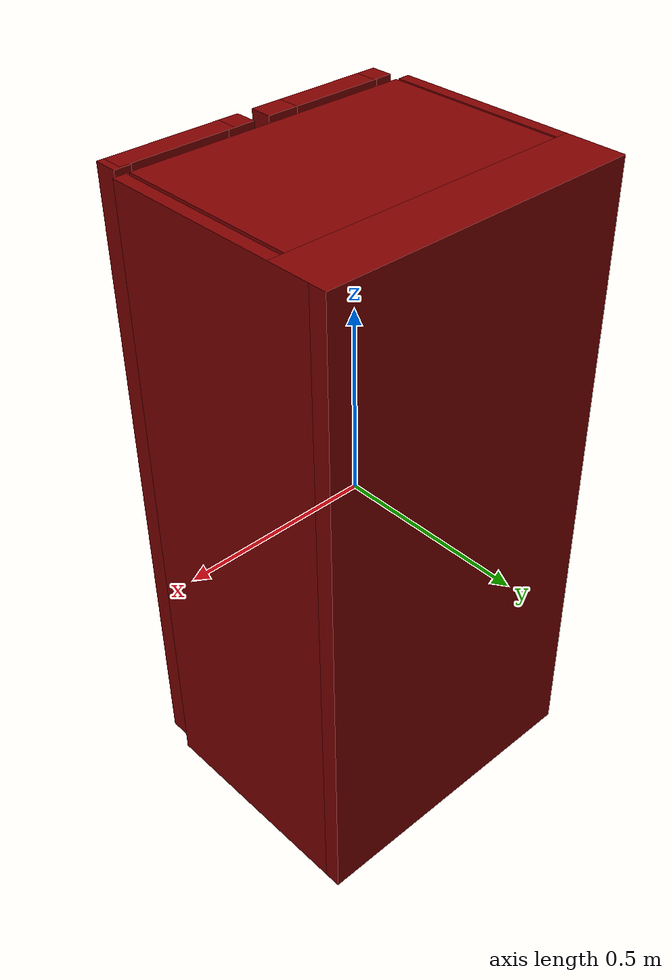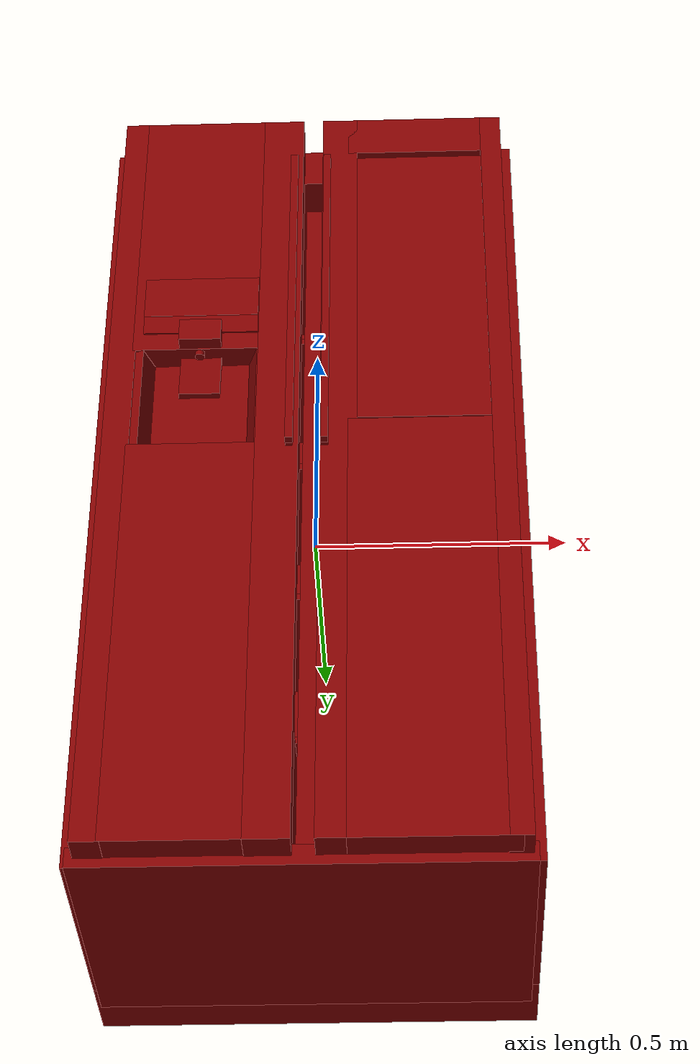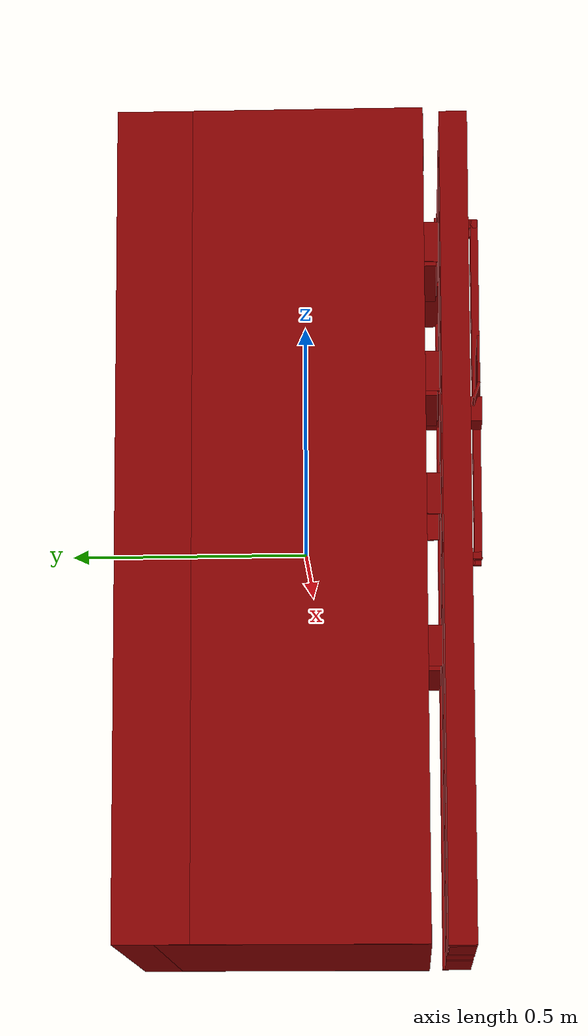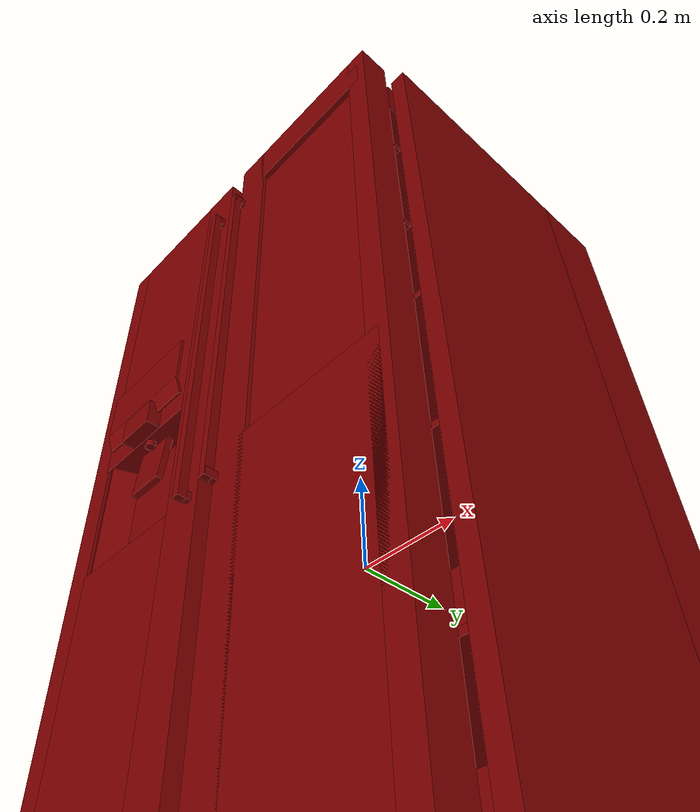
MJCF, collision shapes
<?xml version='1.0' encoding='UTF-8'?>
<mujoco model="model">
  <option timestep="0.002" gravity="0.0 0.0 -9.81"/>
  <compiler angle="radian"/>
  <asset>
    <mesh file="visuals/freezer_door.obj" name="freezer_door_vis"/>
    <mesh file="visuals/freezer_door_Clear.obj" name="freezer_door_Clear_vis"/>
    <mesh file="visuals/freezer_drawer0.obj" name="freezer_drawer0_vis"/>
    <mesh file="visuals/fridge_door.obj" name="fridge_door_vis"/>
    <mesh file="visuals/fridge_door_Clear.obj" name="fridge_door_Clear_vis"/>
    <mesh file="visuals/fridge_drawer0.obj" name="fridge_drawer0_vis"/>
    <mesh file="visuals/Body001.obj" name="Body001_vis"/>
    <mesh file="visuals/Body001_Clear.obj" name="Body001_Clear_vis"/>
    <mesh file="visuals/Handle001.obj" name="Handle001_vis"/>
    <texture file="visuals/T_BC001.png" name="Body001_material" type="2d"/>
    <material name="Body001_material" rgba="1 1 1 1.0" texture="Body001_material" shininess="0.4472135901451111" specular="0.41"/>
    <texture file="visuals/T_BC001.png" name="freezer_door_material" type="2d"/>
    <material name="freezer_door_material" rgba="1 1 1 1.0" texture="freezer_door_material" shininess="0.4472135901451111" specular="0.81"/>
    <material name="freezer_door_Clear_material" rgba="0.41474002599716187 0.41474002599716187 0.41474002599716187 0.699999988079071" shininess="0.5" specular="0.81"/>
    <texture file="visuals/T_BC001.png" name="Handle001_material" type="2d"/>
    <material name="Handle001_material" rgba="1 1 1 1.0" texture="Handle001_material" shininess="0.4472135901451111" specular="0.3103448502657381"/>
    <texture file="visuals/T_BC001.png" name="freezer_drawer0_material" type="2d"/>
    <material name="freezer_drawer0_material" rgba="1 1 1 1.0" texture="freezer_drawer0_material" shininess="0.4472135901451111" specular="0.3103448502657381"/>
    <texture file="visuals/T_BC001.png" name="fridge_door_material" type="2d"/>
    <material name="fridge_door_material" rgba="1 1 1 1.0" texture="fridge_door_material" shininess="0.4472135901451111" specular="0.81"/>
    <material name="fridge_door_Clear_material" rgba="0.41474002599716187 0.41474002599716187 0.41474002599716187 0.699999988079071" shininess="0.5" specular="0.81"/>
    <material name="fridge_drawer0_material" rgba="0.41474002599716187 0.41474002599716187 0.41474002599716187 0.699999988079071" shininess="0.5" specular="0.4"/>
    <material name="Body001_Clear_material" rgba="0.41474002599716187 0.41474002599716187 0.41474002599716187 0.699999988079071" shininess="0.5" specular="0.3103448502657381"/>
  </asset>
  <default>
    <default class="visual">
      <geom conaffinity="0" contype="0" group="1" type="mesh"/>
    </default>
    <default class="collision">
      <geom group="0" rgba="0.5 0 0 0.5"/>
    </default>
    <default class="spawn">
      <geom group="0" rgba="1 1 1 0.5" contype="0" conaffinity="0"/>
      <site group="0" rgba="1 1 1 0.5"/>
    </default>
    <default class="region">
      <geom group="1" conaffinity="0" contype="0" rgba="0 1 0 0"/>
    </default>
  </default>
  <worldbody>
    <body>
      <body name="object">
        <geom mesh="Body001_vis" type="mesh" solimp="0.998 0.998 0.001" solref="0.001 1" friction="0.95 0.3 0.1" class="visual" material="Body001_material"/>
        <geom class="collision" type="box" pos="-0.3998491168022156 0.03714057803153992 -3.230525180697441e-09" size="0.01608090288937092 0.2926904857158661 0.8571996688842773" quat="1.0 0.0 0.0 0.0"/>
        <geom class="collision" type="box" pos="0.40000638365745544 0.03714057803153992 1.0099029168486595e-08" size="0.01593198999762535 0.2926918566226959 0.8572017550468445" quat="1.0 0.0 0.0 0.0"/>
        <geom class="collision" type="box" pos="-1.1801021173596382e-05 0.29677724838256836 -3.2014213502407074e-09" size="0.41595014929771423 0.0777471736073494 0.8572038412094116" quat="1.0 0.0 0.0 0.0"/>
        <geom class="collision" type="box" pos="-0.0012382620479911566 0.016881851479411125 0.8108739852905273" size="0.37610000371932983 0.273532897233963 0.046206194907426834" quat="1.0 0.0 0.0 0.0"/>
        <geom class="collision" type="box" pos="-0.17440995573997498 0.057972297072410583 0.4543333649635315" size="0.16287565231323242 0.16558460891246796 0.006923846900463104" quat="1.0 0.0 0.0 0.0"/>
        <geom class="collision" type="box" pos="-0.0013495938619598746 0.0028999578207731247 -0.04240342974662781" size="0.017184589058160782 0.17612574994564056 0.8143921494483948" quat="1.0 0.0 0.0 0.0"/>
        <geom class="collision" type="box" pos="-0.003516203723847866 0.016881829127669334 -0.8378037810325623" size="0.40684476494789124 0.27353981137275696 0.0195063017308712" quat="1.0 0.0 0.0 0.0"/>
        <geom class="collision" type="box" pos="0.18122144043445587 0.08383700996637344 -0.2676292657852173" size="0.16114282608032227 0.007333500310778618 0.03612767904996872" quat="1.0 0.0 0.0 0.0"/>
        <geom class="collision" type="box" pos="0.3820780813694 -0.03190062940120697 -0.2676292657852173" size="0.003994905389845371 0.11368051171302795 0.036125827580690384" quat="1.0 0.0 0.0 0.0"/>
        <geom class="collision" type="box" pos="-0.38217926025390625 -0.03190062940120697 -0.2676292657852173" size="0.003994922619313002 0.11368140578269958 0.03612605109810829" quat="1.0 0.0 0.0 0.0"/>
        <geom class="collision" type="box" pos="0.02233295328915119 -0.03190062940120697 -0.2676292657852173" size="0.003994935192167759 0.11368205398321152 0.036126215010881424" quat="1.0 0.0 0.0 0.0"/>
        <geom class="collision" type="box" pos="-0.3789580166339874 -0.03190062940120697 -0.4345930814743042" size="0.007216072175651789 0.11368294805288315 0.08158496022224426" quat="1.0 0.0 0.0 0.0"/>
        <geom class="collision" type="box" pos="0.3772643804550171 -0.03190062940120697 -0.4304383099079132" size="0.008808289654552937 0.11368383467197418 0.0907626748085022" quat="1.0 0.0 0.0 0.0"/>
        <geom class="collision" type="box" pos="0.1780054271221161 0.057972297072410583 0.4129199683666229" size="0.16684800386428833 0.16560068726539612 0.006924349814653397" quat="1.0 0.0 0.0 0.0"/>
        <geom class="collision" type="box" pos="0.1780054271221161 0.057972297072410583 0.09163431823253632" size="0.16684836149215698 0.16560110449790955 0.006924362853169441" quat="1.0 0.0 0.0 0.0"/>
        <geom class="collision" type="box" pos="-0.17601948976516724 0.057972297072410583 0.12305711209774017" size="0.16684873402118683 0.16560152173042297 0.006924375891685486" quat="1.0 0.0 0.0 0.0"/>
        <geom class="collision" type="box" pos="-0.17601948976516724 0.057972297072410583 -0.19491110742092133" size="0.16684909164905548 0.1656019389629364 0.006924388464540243" quat="1.0 0.0 0.0 0.0"/>
        <geom class="collision" type="box" pos="-0.17601948976516724 0.057972297072410583 -0.5179890990257263" size="0.16684946417808533 0.16560234129428864 0.006924401503056288" quat="1.0 0.0 0.0 0.0"/>
        <geom class="collision" type="box" pos="0.1780054271221161 -0.004818879067897797 -0.30868032574653625" size="0.1668516993522644 0.1656048744916916 0.00692448066547513" quat="1.0 0.0 0.0 0.0"/>
        <body name="freezer_door">
          <joint axis="0.0 0.0 -1.0" pos="-0.37913239002227783 -0.311129629611969 0.00011271238327026367" limited="true" name="freezer_door_joint" range="0.0 1.5707963267948966" type="hinge" damping="1" frictionloss="1" armature=".01" stiffness="0.05"/>
          <geom mesh="freezer_door_vis" type="mesh" solimp="0.998 0.998 0.001" solref="0.001 1" friction="0.95 0.3 0.1" class="visual" material="freezer_door_material"/>
          <geom class="collision" type="box" pos="-0.3637799322605133 -0.3178723156452179 -4.644957243726822e-06" size="0.02609415352344513 0.028971223160624504 0.8574408888816833" quat="1.0 0.0 0.0 0.0"/>
          <geom class="collision" type="box" pos="-0.058020249009132385 -0.3178723454475403 -4.545247520582052e-06" size="0.040952883660793304 0.028972994536161423 0.8574987053871155" quat="1.0 0.0 0.0 0.0"/>
          <geom class="collision" type="box" pos="-0.201767235994339 -0.31787237524986267 0.5436348915100098" size="0.1416359692811966 0.02897285483777523 0.31372469663619995" quat="1.0 0.0 0.0 0.0"/>
          <geom class="collision" type="box" pos="-0.20176735520362854 -0.3191768527030945 -0.4313064515590668" size="0.1416359394788742 0.027668198570609093 0.42609769105911255" quat="1.0 0.0 0.0 0.0"/>
          <geom class="collision" type="box" pos="-0.21049916744232178 -0.289520263671875 0.12573562562465668" size="0.09687431156635284 0.0026282654143869877 0.15400418639183044" quat="1.0 0.0 0.0 0.0"/>
          <geom class="collision" type="box" pos="-0.10186759382486343 -0.31699565052986145 0.1257355958223343" size="0.008751383051276207 0.025852853432297707 0.1540149748325348" quat="5.978950667895333e-08 -0.9848077297210693 -0.17364826798439026 9.569190950742268e-08"/>
          <geom class="collision" type="box" pos="-0.03354785591363907 -0.3616794943809509 -0.010237783193588257" size="0.007116621360182762 0.011857819743454456 0.007636724505573511" quat="1.0 0.0 0.0 0.0" name="freezer_door_handle_2"/>
          <geom class="collision" type="box" pos="-0.03324173390865326 -0.3616794943809509 0.7223271131515503" size="0.007422801572829485 0.011857821606099606 0.009034658782184124" quat="1.0 0.0 0.0 0.0" name="freezer_door_handle_1"/>
          <geom class="collision" type="box" pos="-0.033224087208509445 -0.36676377058029175 0.35558971762657166" size="0.007440386340022087 0.008210212923586369 0.37397822737693787" quat="1.0 0.0 0.0 0.0" name="freezer_door_handle_main"/>
          <geom class="collision" type="box" pos="-0.32068294286727905 -0.3180026113986969 0.12573552131652832" size="0.008751380257308483 0.026924479752779007 0.1540149301290512" quat="0.9848077297210693 -1.006560026439729e-07 -6.740105362723625e-08 -0.17364826798439026"/>
          <geom class="collision" type="box" pos="-0.21049916744232178 -0.3656257688999176 0.3469392955303192" size="0.11166238784790039 0.0026279075536876917 0.04852776601910591" quat="1.0 0.0 0.0 0.0"/>
          <geom class="collision" type="box" pos="-0.21049916744232178 -0.3592568039894104 0.25828516483306885" size="0.040849726647138596 0.014025458134710789 0.025840990245342255" quat="1.0 0.0 0.0 0.0"/>
          <geom class="collision" type="box" pos="-0.21049916744232178 -0.3605700135231018 0.2809782922267914" size="0.11166238784790039 0.002627908019348979 0.017435817047953606" quat="0.9843474626541138 0.1762387603521347 0.0 0.0"/>
          <geom class="collision" type="cylinder" pos="-0.2122420370578766 -0.33505016565322876 0.22447526454925537" size="0.009479692205786705 0.005059966817498207" quat="1.0 0.0 0.0 0.0"/>
          <geom class="collision" type="box" pos="-0.20444320142269135 -0.2935011088848114 -0.0009552054107189178" size="0.16011016070842743 0.0026279075536876917 0.8543738722801208" quat="1.0 0.0 0.0 0.0" name="freezer_door_main"/>
          <body name="freezer_door_Clear">
            <geom mesh="freezer_door_Clear_vis" type="mesh" solimp="0.998 0.998 0.001" solref="0.001 1" friction="0.95 0.3 0.1" class="visual" material="freezer_door_Clear_material"/>
            <geom class="collision" type="box" pos="-0.1932118535041809 -0.21412567794322968 0.3201095759868622" size="0.14153681695461273 0.00447157071903348 0.04057547450065613" quat="1.0 0.0 0.0 0.0"/>
            <geom class="collision" type="box" pos="-0.3274475634098053 -0.2465827763080597 0.32012560963630676" size="0.0044717323035001755 0.03794160485267639 0.04216281697154045" quat="0.9990481734275818 3.935991443881903e-08 3.606675491596434e-08 0.04362005740404129"/>
            <geom class="collision" type="box" pos="-0.058751147240400314 -0.24590946733951569 0.32012560963630676" size="0.0044717323035001755 0.037941597402095795 0.04216281697154045" quat="0.9961947202682495 3.431528128317041e-08 4.0895347552805106e-08 -0.08715561032295227"/>
            <geom class="collision" type="box" pos="-0.19410477578639984 -0.24343930184841156 0.2734234035015106" size="0.13424493372440338 0.03696306794881821 0.0044713094830513" quat="1.0 0.0 0.0 0.0"/>
            <geom class="collision" type="box" pos="-0.1932118535041809 -0.21412567794322968 0.5949305295944214" size="0.14153681695461273 0.00447157071903348 0.04057547450065613" quat="1.0 0.0 0.0 0.0"/>
            <geom class="collision" type="box" pos="-0.3281252086162567 -0.2465827763080597 0.5949465036392212" size="0.0044717323035001755 0.03794160485267639 0.04216281697154045" quat="0.9990481734275818 3.935991443881903e-08 3.606675491596434e-08 0.04362005740404129"/>
            <geom class="collision" type="box" pos="-0.058751147240400314 -0.24590946733951569 0.5949465036392212" size="0.0044717323035001755 0.037941597402095795 0.04216281697154045" quat="0.9961947202682495 3.431528128317041e-08 4.0895347552805106e-08 -0.08715561032295227"/>
            <geom class="collision" type="box" pos="-0.19410477578639984 -0.24343930184841156 0.5482443571090698" size="0.13424493372440338 0.03696461394429207 0.004471502732485533" quat="1.0 0.0 0.0 0.0"/>
            <geom class="collision" type="box" pos="-0.19127090275287628 -0.21412567794322968 -0.25149473547935486" size="0.14153681695461273 0.00447157071903348 0.04057547450065613" quat="1.0 0.0 0.0 0.0"/>
            <geom class="collision" type="box" pos="-0.3251919448375702 -0.2465827763080597 -0.25147876143455505" size="0.0044717323035001755 0.03794160485267639 0.04216281697154045" quat="0.9990481734275818 3.935991443881903e-08 3.606675491596434e-08 0.04362005740404129"/>
            <geom class="collision" type="box" pos="-0.058751147240400314 -0.24590946733951569 -0.25147876143455505" size="0.0044717323035001755 0.037941597402095795 0.04216281697154045" quat="0.9961947202682495 3.431528128317041e-08 4.0895347552805106e-08 -0.08715561032295227"/>
            <geom class="collision" type="box" pos="-0.19410477578639984 -0.24343930184841156 -0.2981809079647064" size="0.13424493372440338 0.03696485608816147 0.004471533000469208" quat="1.0 0.0 0.0 0.0"/>
            <geom class="collision" type="box" pos="-0.1932118535041809 -0.21412567794322968 0.060747116804122925" size="0.14153681695461273 0.00447157071903348 0.04057547450065613" quat="1.0 0.0 0.0 0.0"/>
            <geom class="collision" type="box" pos="-0.3368045389652252 -0.2465827763080597 0.060763150453567505" size="0.0044717323035001755 0.03794160485267639 0.04216281697154045" quat="0.9990481734275818 3.935991443881903e-08 3.606675491596434e-08 0.04362005740404129"/>
            <geom class="collision" type="box" pos="-0.058751147240400314 -0.24590946733951569 0.060763150453567505" size="0.0044717323035001755 0.037941597402095795 0.04216281697154045" quat="0.9961947202682495 3.431528128317041e-08 4.0895347552805106e-08 -0.08715561032295227"/>
          </body>
          <body name="Handle001">
            <joint axis="1.0 0.0 0.0" pos="-0.21227864921092987 -0.3191654682159424 0.23152491450309753" limited="true" name="Handle001_joint" range="0.0 0.17453292519943295" type="hinge" damping="1" frictionloss="1" armature=".01" stiffness="0.05"/>
            <geom mesh="Handle001_vis" type="mesh" solimp="0.998 0.998 0.001" solref="0.001 1" friction="0.95 0.3 0.1" class="visual" material="Handle001_material"/>
            <geom class="collision" type="box" pos="-0.21049916744232178 -0.32436349987983704 0.1745854616165161" size="0.0395553819835186 0.006190866231918335 0.048885319381952286" quat="0.9989607930183411 -0.04557826742529869 -0.0 0.0"/>
          </body>
        </body>
        <body name="freezer_drawer0">
          <geom class="region" name="reg_freezer_drawer0" type="box" pos="-0.17982512712478638 -0.0020901858806610107 -0.6719180941581726" size="0.15369108319282532 0.1818908154964447 0.12094289064407349"/>
          <joint axis="0.0 -1.0 0.0" pos="-0.18010088801383972 -0.003710433840751648 -0.6739355325698853" limited="true" name="freezer_drawer0_joint" range="0.0 0.4" type="slide" damping="1" frictionloss="1" armature=".01" stiffness="0.05"/>
          <geom mesh="freezer_drawer0_vis" type="mesh" solimp="0.998 0.998 0.001" solref="0.001 1" friction="0.95 0.3 0.1" class="visual" material="freezer_drawer0_material"/>
          <geom class="collision" type="box" pos="-0.0263947956264019 0.0004640929400920868 -0.6716325283050537" size="0.002503300318494439 0.19439047574996948 0.12257783114910126" quat="1.0 0.0 0.0 0.0"/>
          <geom class="collision" type="box" pos="-0.18498799204826355 -0.0035164300352334976 -0.7931268215179443" size="0.1476873755455017 0.1884990632534027 0.006600691471248865" quat="1.0 0.0 0.0 0.0"/>
          <geom class="collision" type="box" pos="-0.1797444075345993 -0.19903026521205902 -0.6743975877761841" size="0.008531502448022366 0.14768734574317932 0.1249077096581459" quat="0.7064337730407715 0.030843520537018776 0.030843501910567284 -0.7064337730407715"/>
          <geom class="collision" type="box" pos="-0.3286738097667694 -0.005953514948487282 -0.6712871789932251" size="0.0017044241540133953 0.1965075135231018 0.12294085323810577" quat="1.0 0.0 0.0 0.0"/>
          <geom class="collision" type="box" pos="-0.18498799204826355 0.1923104077577591 -0.6713608503341675" size="0.14768728613853455 0.004717339761555195 0.12290552258491516" quat="0.9993630051612854 -0.035687901079654694 7.924383650813105e-18 1.4908910031358285e-24"/>
        </body>
        <body name="fridge_door">
          <joint axis="0.0 0.0 1.0" pos="0.36411282420158386 -0.30992037057876587 0.00013592839241027832" limited="true" name="fridge_door_joint" range="0.0 1.5707963267948966" type="hinge" damping="1" frictionloss="1" armature=".01" stiffness="0.05"/>
          <geom mesh="fridge_door_vis" type="mesh" solimp="0.998 0.998 0.001" solref="0.001 1" friction="0.95 0.3 0.1" class="visual" material="fridge_door_material"/>
          <geom class="collision" type="box" pos="0.21107126772403717 -0.28766950964927673 0.6105823516845703" size="0.16717509925365448 0.03695930913090706 0.004470839165151119" quat="1.0 0.0 0.0 0.0"/>
          <geom class="collision" type="box" pos="0.21638233959674835 -0.3154853582382202 0.6317541599273682" size="0.17248615622520447 0.004470906686037779 0.01505897007882595" quat="1.0 0.0 0.0 0.0"/>
          <geom class="collision" type="box" pos="0.21107125282287598 -0.28759223222732544 0.36789071559906006" size="0.16717509925365448 0.03695967420935631 0.004470885265618563" quat="1.0 0.0 0.0 0.0"/>
          <geom class="collision" type="box" pos="0.21638232469558716 -0.3154853582382202 0.3890624940395355" size="0.17248615622520447 0.004470952320843935 0.01505915354937315" quat="1.0 0.0 0.0 0.0"/>
          <geom class="collision" type="box" pos="0.3716951012611389 -0.31598326563835144 -2.3632310330867767e-08" size="0.02119011990725994 0.030856389552354813 0.8573130369186401" quat="1.0 0.0 0.0 0.0"/>
          <geom class="collision" type="box" pos="0.05885697156190872 -0.31830477714538574 -2.8405338525772095e-08" size="0.03553950414061546 0.028534872457385063 0.8573130369186401" quat="1.0 0.0 0.0 0.0"/>
          <geom class="collision" type="box" pos="0.22578296065330505 -0.31830474734306335 0.8090223670005798" size="0.14912791550159454 0.028534894809126854 0.048290934413671494" quat="1.0 0.0 0.0 0.0"/>
          <geom class="collision" type="box" pos="0.22578296065330505 -0.31830477714538574 -0.4050332009792328" size="0.14912794530391693 0.028534889221191406 0.45228004455566406" quat="1.0 0.0 0.0 0.0"/>
          <geom class="collision" type="box" pos="0.033434636890888214 -0.36676377058029175 0.35558968782424927" size="0.007116577122360468 0.008210202679038048 0.3739778995513916" quat="1.0 0.0 0.0 0.0" name="fridge_door_handle_main"/>
          <geom class="collision" type="box" pos="0.033434610813856125 -0.3616794943809509 0.721796989440918" size="0.007116617169231176 0.011857815086841583 0.008504430763423443" quat="1.0 0.0 0.0 0.0" name="fridge_door_handle_1"/>
          <geom class="collision" type="box" pos="0.0334346629679203 -0.3616794943809509 -0.010237778536975384" size="0.007116619497537613 0.011857816949486732 0.007636722177267075" quat="1.0 0.0 0.0 0.0" name="fridge_door_handle_2"/>
          <geom class="collision" type="box" pos="0.2217985838651657 -0.2935011088848114 -0.0009552054107189178" size="0.16011016070842743 0.0026279075536876917 0.8543738722801208" quat="1.0 0.0 0.0 0.0" name="fridge_door_main"/>
          <body name="fridge_door_Clear">
            <geom mesh="fridge_door_Clear_vis" type="mesh" solimp="0.998 0.998 0.001" solref="0.001 1" friction="0.95 0.3 0.1" class="visual" material="fridge_door_Clear_material"/>
            <geom class="collision" type="box" pos="0.22578303515911102 -0.33625972270965576 0.40482351183891296" size="0.14912797510623932 0.0027983826585114002 0.3483201265335083" quat="1.0 0.0 0.0 0.0"/>
          </body>
        </body>
        <body name="fridge_drawer0">
          <geom class="region" name="reg_fridge_drawer0" type="box" pos="0.18142327945679426 -0.0020901858806610107 -0.6719180941581726" size="0.1536910803988576 0.1818908154964447 0.12094289064407349"/>
          <joint axis="0.0 -1.0 0.0" pos="0.18224990367889404 -0.003710433840751648 -0.6739355325698853" limited="true" name="fridge_drawer0_joint" range="0.0 0.4" type="slide" damping="1" frictionloss="1" armature=".01" stiffness="0.05"/>
          <geom mesh="fridge_drawer0_vis" type="mesh" solimp="0.998 0.998 0.001" solref="0.001 1" friction="0.95 0.3 0.1" class="visual" material="fridge_drawer0_material"/>
          <geom class="collision" type="box" pos="0.181096613407135 0.19208529591560364 -0.6713447570800781" size="0.15466763079166412 0.004668667912483215 0.12290620058774948" quat="0.9993630051612854 -0.035687901079654694 7.924383650813105e-18 1.4908910031358285e-24"/>
          <geom class="collision" type="box" pos="0.026442985981702805 -0.0019667595624923706 -0.6720328330993652" size="0.0029787947423756123 0.19798608124256134 0.12220677733421326" quat="1.0 0.0 0.0 0.0"/>
          <geom class="collision" type="box" pos="0.18016836047172546 -0.19750571250915527 -0.6736435890197754" size="0.008033338002860546 0.15466763079166412 0.12565748393535614" quat="0.7064337730407715 0.03084353357553482 0.030843520537018776 -0.7064337730407715"/>
          <geom class="collision" type="box" pos="0.181096613407135 -0.0021244073286652565 -0.7931268215179443" size="0.15466764569282532 0.1884990632534027 0.006600694730877876" quat="1.0 0.0 0.0 0.0"/>
          <geom class="collision" type="box" pos="0.33317628502845764 -0.0008981227874755859 -0.6717687845230103" size="0.0020882468670606613 0.2001560777425766 0.12245085090398788" quat="1.0 0.0 0.0 0.0"/>
        </body>
        <body name="Body001_Clear">
          <geom mesh="Body001_Clear_vis" type="mesh" solimp="0.998 0.998 0.001" solref="0.001 1" friction="0.95 0.3 0.1" class="visual" material="Body001_Clear_material"/>
        </body>
        <geom class="region" name="reg_freezer_shelf0" type="box" pos="-0.17602235078811646 0.05723372474312782 -0.3586641997098923" size="0.1588306427001953 0.16261237487196922 0.15510089695453644"/>
        <geom class="region" name="reg_freezer_shelf1" type="box" pos="-0.1767733246088028 0.05723372474312782 -0.036935582756996155" size="0.15958161652088165 0.16261237487196922 0.15466885268688202"/>
        <geom class="region" name="reg_freezer_shelf2" type="box" pos="-0.17752431333065033 0.05723372474312782 0.28878720104694366" size="0.1603326052427292 0.16261237487196922 0.1612502783536911"/>
        <geom class="region" name="reg_freezer_shelf3" type="box" pos="-0.1769402027130127 0.05723372474312782 0.6145076155662537" size="0.15974849462509155 0.16261237487196922 0.1543976068496704"/>
        <geom class="region" name="reg_fridge_shelf0" type="box" pos="0.18180476129055023 -0.035395726561546326 -0.10720092803239822" size="0.159553661942482 0.12678995728492737 0.1948752924799919"/>
        <geom class="region" name="reg_fridge_shelf1" type="box" pos="0.1772339241579175 0.05723372474312782 0.25253742933273315" size="0.16408730577677488 0.16261237487196922 0.15527939796447754"/>
        <geom class="region" name="reg_fridge_shelf2" type="box" pos="0.17845013830810785 0.05900739133358002 0.5941250324249268" size="0.1640378227457404 0.1599135845899582 0.1760675311088562"/>
        <geom class="region" name="reg_main" type="box" pos="4.1637067624833435e-06 0.013849209062755108 -2.9802322387695312e-08" size="0.41593417525291443 0.36068883538246155 0.8573131561279297"/>
      </body>
    </body>
  </worldbody>
  <actuator>
    <motor name="freezer_door_joint_actuator" joint="freezer_door_joint" gear="50"/>
    <motor name="freezer_drawer0_joint_actuator" joint="freezer_drawer0_joint" gear="50"/>
    <motor name="fridge_door_joint_actuator" joint="fridge_door_joint" gear="50"/>
    <motor name="fridge_drawer0_joint_actuator" joint="fridge_drawer0_joint" gear="50"/>
    <motor name="Handle001_joint_actuator" joint="Handle001_joint" gear="50"/>
  </actuator>
</mujoco>
